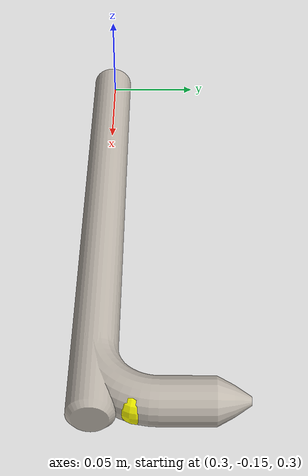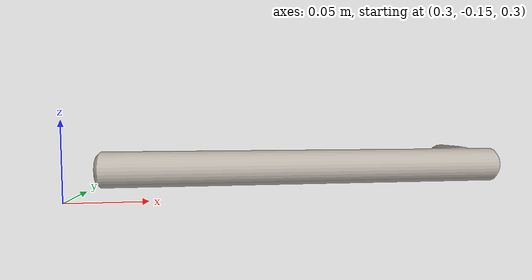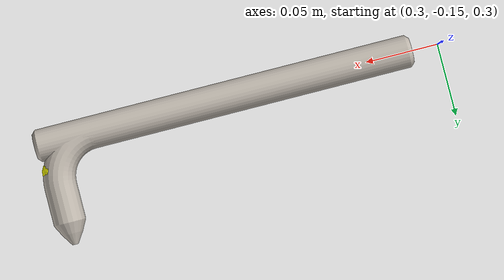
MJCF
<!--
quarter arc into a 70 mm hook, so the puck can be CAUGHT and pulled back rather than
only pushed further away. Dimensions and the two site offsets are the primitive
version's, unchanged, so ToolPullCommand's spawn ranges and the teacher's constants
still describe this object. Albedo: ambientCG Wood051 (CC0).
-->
<?xml version="1.0"?>
<mujoco model="stick">
  <compiler angle="radian" meshdir="assets" texturedir="assets"/>
  <asset>
    <texture name="stick_tex" type="2d" file="stick_tex.png"/>
    <material name="stick_mat" texture="stick_tex" specular="0.15" shininess="0.15"/>
    <mesh name="stick_vis" file="stick_vis.obj"/>
  </asset>
  <worldbody>
    <body name="stick" pos="0.45 -0.15 0.32">
      <freejoint name="stick_joint"/>
      <geom name="stick_visual" type="mesh" mesh="stick_vis" material="stick_mat"
            contype="0" conaffinity="0" group="2" mass="0"/>
      <!-- Shaft: long axis along world x, grasped near the near (-x) end. -->
      <geom type="cylinder" name="stick_shaft" size="0.011 0.13" pos="0 0 0"
            zaxis="1 0 0" mass="0.059" condim="3" friction="1 0.03 0.003" group="3"
            rgba="0.5 0.5 0.5 0.3" contype="1" conaffinity="1" solref="0.01 1"/>
      <!-- Hook at the far (+x) end, projecting along +y to catch the puck. -->
      <geom type="cylinder" name="stick_hook" size="0.011 0.035" pos="0.12 0.035 0"
            zaxis="0 1 0" mass="0.016" condim="3" friction="1 0.03 0.003" group="3"
            rgba="0.5 0.5 0.5 0.3" contype="1" conaffinity="1" solref="0.01 1"/>
      <!-- Grasp point near the handle end. -->
      <site name="object_site" pos="-0.09 0 0" size="0.01" rgba="1 0 0 1"/>
      <!-- Working point at the hook (used for tool-tip shaping). -->
      <site name="tool_tip_site" pos="0.12 0.02 0" size="0.01" rgba="1 1 0 1"/>
    </body>
  </worldbody>
</mujoco>
